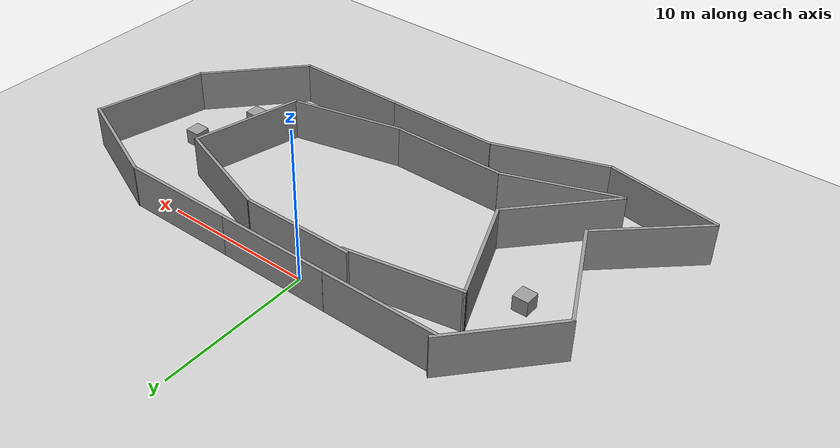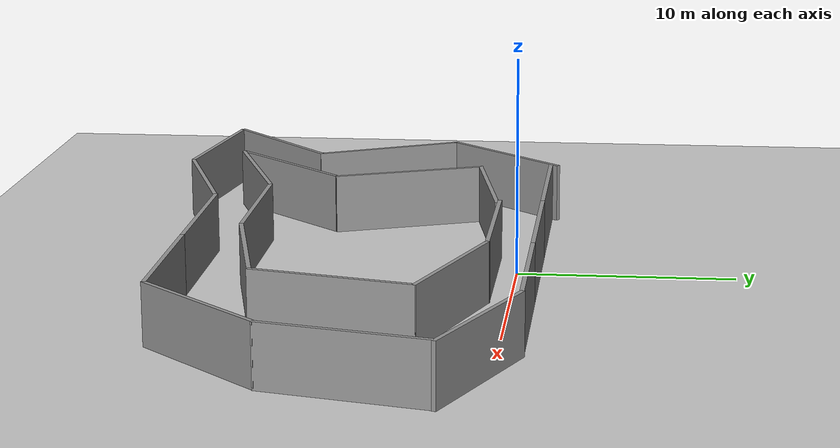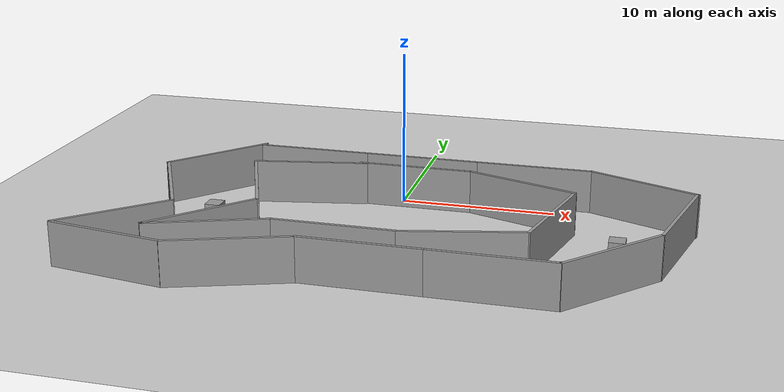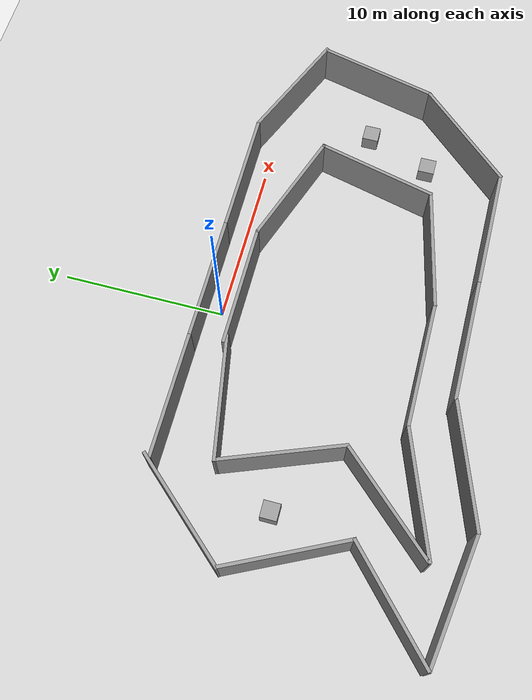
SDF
<sdf version="1.4">
 <world name="default">
  <light name="sun" type="directional">
   <pose>0 0 10 0 -0 0</pose>
   <diffuse>0.8 0.8 0.8 1</diffuse>
   <specular>0.2 0.2 0.2 1</specular>
   <attenuation>
    <range>1000</range>
    <constant>0.9</constant>
    <linear>0.01</linear>
    <quadratic>0.001</quadratic>
   </attenuation>
   <direction>-0.5 0.1 -0.9</direction>
  </light>
  <model name="ground_plane">
   <static>1</static>
   <link name="link">
    <collision name="collision">
     <geometry><plane><normal>0 0 1</normal><size>100 100</size></plane></geometry>
     <surface><friction><ode><mu>100</mu><mu2>50</mu2></ode></friction></surface>
    </collision>
    <visual name="visual">
     <cast_shadows>0</cast_shadows>
     <geometry><plane><normal>0 0 1</normal><size>100 100</size></plane></geometry>
     <material>
      <script><uri>file://media/materials/scripts/gazebo.material</uri><name>Gazebo/Grey</name></script>
     </material>
    </visual>
    <velocity_decay><linear>0</linear><angular>0</angular></velocity_decay>
   </link>
  </model>
  <physics type="ode">
   <max_step_size>0.01</max_step_size>
   <real_time_factor>1</real_time_factor>
   <real_time_update_rate>100</real_time_update_rate>
   <gravity>0 0 -9.8</gravity>
  </physics>
  <scene><ambient>0.4 0.4 0.4 1</ambient><background>0.7 0.7 0.7 1</background><shadows>1</shadows></scene>
  <spherical_coordinates>
   <surface_model>EARTH_WGS84</surface_model>
   <latitude_deg>0</latitude_deg>
   <longitude_deg>0</longitude_deg>
   <elevation>0</elevation>
   <heading_deg>0</heading_deg>
  </spherical_coordinates>
  <model name="grey_wall">
   <static>1</static>
   <link name="link">
    <pose>0 0 1.4 0 -0 0</pose>
    <collision name="collision"><geometry><box><size>7.5 0.2 2.8</size></box></geometry></collision>
    <visual name="visual">
     <cast_shadows>0</cast_shadows>
     <geometry><box><size>7.5 0.2 2.8</size></box></geometry>
     <material>
      <script>
       <uri>model://grey_wall/materials/scripts</uri>
       <uri>model://grey_wall/materials/textures</uri>
       <name>vrc/grey_wall</name>
      </script>
     </material>
    </visual>
    <velocity_decay><linear>0</linear><angular>0</angular></velocity_decay>
   </link>
   <pose>1 1 0 0 -0 0</pose>
  </model>
  <model name="grey_wall_0">
   <static>1</static>
   <link name="link">
    <pose>0 0 1.4 0 -0 0</pose>
    <collision name="collision"><geometry><box><size>7.5 0.2 2.8</size></box></geometry></collision>
    <visual name="visual">
     <cast_shadows>0</cast_shadows>
     <geometry><box><size>7.5 0.2 2.8</size></box></geometry>
     <material>
      <script>
       <uri>model://grey_wall/materials/scripts</uri>
       <uri>model://grey_wall/materials/textures</uri>
       <name>vrc/grey_wall</name>
      </script>
     </material>
    </visual>
    <velocity_decay><linear>0</linear><angular>0</angular></velocity_decay>
   </link>
   <pose>1 -1 0 0 -0 0</pose>
  </model>
  <model name="grey_wall_1">
   <static>1</static>
   <link name="link">
    <pose>0 0 1.4 0 -0 0</pose>
    <collision name="collision"><geometry><box><size>7.5 0.2 2.8</size></box></geometry></collision>
    <visual name="visual">
     <cast_shadows>0</cast_shadows>
     <geometry><box><size>7.5 0.2 2.8</size></box></geometry>
     <material>
      <script>
       <uri>model://grey_wall/materials/scripts</uri>
       <uri>model://grey_wall/materials/textures</uri>
       <name>vrc/grey_wall</name>
      </script>
     </material>
    </visual>
    <velocity_decay><linear>0</linear><angular>0</angular></velocity_decay>
   </link>
   <pose>8.1679 -2.21124 0 0 0 -0.3356</pose>
  </model>
  <model name="grey_wall_2">
   <static>1</static>
   <link name="link">
    <pose>0 0 1.4 0 -0 0</pose>
    <collision name="collision"><geometry><box><size>7.5 0.2 2.8</size></box></geometry></collision>
    <visual name="visual">
     <cast_shadows>0</cast_shadows>
     <geometry><box><size>7.5 0.2 2.8</size></box></geometry>
     <material>
      <script>
       <uri>model://grey_wall/materials/scripts</uri>
       <uri>model://grey_wall/materials/textures</uri>
       <name>vrc/grey_wall</name>
      </script>
     </material>
    </visual>
    <velocity_decay><linear>0</linear><angular>0</angular></velocity_decay>
   </link>
   <pose>10.7542 -7.0132 0 0 0 -1.80708</pose>
  </model>
  <model name="grey_wall_3">
   <static>1</static>
   <link name="link">
    <pose>0 0 1.4 0 -0 0</pose>
    <collision name="collision"><geometry><box><size>7.5 0.2 2.8</size></box></geometry></collision>
    <visual name="visual">
     <cast_shadows>0</cast_shadows>
     <geometry><box><size>7.5 0.2 2.8</size></box></geometry>
     <material>
      <script>
       <uri>model://grey_wall/materials/scripts</uri>
       <uri>model://grey_wall/materials/textures</uri>
       <name>vrc/grey_wall</name>
      </script>
     </material>
    </visual>
    <velocity_decay><linear>0</linear><angular>0</angular></velocity_decay>
   </link>
   <pose>6.21517 -11.4284 0 0 -0 0.228399</pose>
  </model>
  <model name="grey_wall_4">
   <static>1</static>
   <link name="link">
    <pose>0 0 1.4 0 -0 0</pose>
    <collision name="collision"><geometry><box><size>7.5 0.2 2.8</size></box></geometry></collision>
    <visual name="visual">
     <cast_shadows>0</cast_shadows>
     <geometry><box><size>7.5 0.2 2.8</size></box></geometry>
     <material>
      <script>
       <uri>model://grey_wall/materials/scripts</uri>
       <uri>model://grey_wall/materials/textures</uri>
       <name>vrc/grey_wall</name>
      </script>
     </material>
    </visual>
    <velocity_decay><linear>0</linear><angular>0</angular></velocity_decay>
   </link>
   <pose>-1.15525 -12.2553 0 0 -0 0</pose>
  </model>
  <model name="grey_wall_5">
   <static>1</static>
   <link name="link">
    <pose>0 0 1.4 0 -0 0</pose>
    <collision name="collision"><geometry><box><size>7.5 0.2 2.8</size></box></geometry></collision>
    <visual name="visual">
     <cast_shadows>0</cast_shadows>
     <geometry><box><size>7.5 0.2 2.8</size></box></geometry>
     <material>
      <script>
       <uri>model://grey_wall/materials/scripts</uri>
       <uri>model://grey_wall/materials/textures</uri>
       <name>vrc/grey_wall</name>
      </script>
     </material>
    </visual>
    <velocity_decay><linear>0</linear><angular>0</angular></velocity_decay>
   </link>
   <pose>-8.39379 -13.5517 0 0 -0 0.355653</pose>
  </model>
  <model name="grey_wall_6">
   <static>1</static>
   <link name="link">
    <pose>0 0 1.4 0 -0 0</pose>
    <collision name="collision"><geometry><box><size>7.5 0.2 2.8</size></box></geometry></collision>
    <visual name="visual">
     <cast_shadows>0</cast_shadows>
     <geometry><box><size>7.5 0.2 2.8</size></box></geometry>
     <material>
      <script>
       <uri>model://grey_wall/materials/scripts</uri>
       <uri>model://grey_wall/materials/textures</uri>
       <name>vrc/grey_wall</name>
      </script>
     </material>
    </visual>
    <velocity_decay><linear>0</linear><angular>0</angular></velocity_decay>
   </link>
   <pose>-9.38387 -12.076 0 0 -0 0.830881</pose>
  </model>
  <model name="grey_wall_7">
   <static>1</static>
   <link name="link">
    <pose>0 0 1.4 0 -0 0</pose>
    <collision name="collision"><geometry><box><size>7.5 0.2 2.8</size></box></geometry></collision>
    <visual name="visual">
     <cast_shadows>0</cast_shadows>
     <geometry><box><size>7.5 0.2 2.8</size></box></geometry>
     <material>
      <script>
       <uri>model://grey_wall/materials/scripts</uri>
       <uri>model://grey_wall/materials/textures</uri>
       <name>vrc/grey_wall</name>
      </script>
     </material>
    </visual>
    <velocity_decay><linear>0</linear><angular>0</angular></velocity_decay>
   </link>
   <pose>-8.1482 -5.85715 0 0 0 -1.20155</pose>
  </model>
  <model name="grey_wall_8">
   <static>1</static>
   <link name="link">
    <pose>0 0 1.4 0 -0 0</pose>
    <collision name="collision"><geometry><box><size>7.5 0.2 2.8</size></box></geometry></collision>
    <visual name="visual">
     <cast_shadows>0</cast_shadows>
     <geometry><box><size>7.5 0.2 2.8</size></box></geometry>
     <material>
      <script>
       <uri>model://grey_wall/materials/scripts</uri>
       <uri>model://grey_wall/materials/textures</uri>
       <name>vrc/grey_wall</name>
      </script>
     </material>
    </visual>
    <velocity_decay><linear>0</linear><angular>0</angular></velocity_decay>
   </link>
   <pose>-5.8757 -1.78085 0 -0.002531 0.000102 0.185724</pose>
  </model>
  <model name="grey_wall_9">
   <static>1</static>
   <link name="link">
    <pose>0 0 1.4 0 -0 0</pose>
    <collision name="collision"><geometry><box><size>7.5 0.2 2.8</size></box></geometry></collision>
    <visual name="visual">
     <cast_shadows>0</cast_shadows>
     <geometry><box><size>7.5 0.2 2.8</size></box></geometry>
     <material>
      <script>
       <uri>model://grey_wall/materials/scripts</uri>
       <uri>model://grey_wall/materials/textures</uri>
       <name>vrc/grey_wall</name>
      </script>
     </material>
    </visual>
    <velocity_decay><linear>0</linear><angular>0</angular></velocity_decay>
   </link>
   <pose>8.48766 1 0 0 -0 0</pose>
  </model>
  <model name="grey_wall_10">
   <static>1</static>
   <link name="link">
    <pose>0 0 1.4 0 -0 0</pose>
    <collision name="collision"><geometry><box><size>7.5 0.2 2.8</size></box></geometry></collision>
    <visual name="visual">
     <cast_shadows>0</cast_shadows>
     <geometry><box><size>7.5 0.2 2.8</size></box></geometry>
     <material>
      <script>
       <uri>model://grey_wall/materials/scripts</uri>
       <uri>model://grey_wall/materials/textures</uri>
       <name>vrc/grey_wall</name>
      </script>
     </material>
    </visual>
    <velocity_decay><linear>0</linear><angular>0</angular></velocity_decay>
   </link>
   <pose>15.5856 -0.415855 0 0 0 -0.398813</pose>
  </model>
  <model name="grey_wall_11">
   <static>1</static>
   <link name="link">
    <pose>0 0 1.4 0 -0 0</pose>
    <collision name="collision"><geometry><box><size>7.5 0.2 2.8</size></box></geometry></collision>
    <visual name="visual">
     <cast_shadows>0</cast_shadows>
     <geometry><box><size>7.5 0.2 2.8</size></box></geometry>
     <material>
      <script>
       <uri>model://grey_wall/materials/scripts</uri>
       <uri>model://grey_wall/materials/textures</uri>
       <name>vrc/grey_wall</name>
      </script>
     </material>
    </visual>
    <velocity_decay><linear>0</linear><angular>0</angular></velocity_decay>
   </link>
   <pose>18.0434 -5.47553 0 0 -0 1.33971</pose>
  </model>
  <model name="grey_wall_12">
   <static>1</static>
   <link name="link">
    <pose>0 0 1.4 0 -0 0</pose>
    <collision name="collision"><geometry><box><size>7.5 0.2 2.8</size></box></geometry></collision>
    <visual name="visual">
     <cast_shadows>0</cast_shadows>
     <geometry><box><size>7.5 0.2 2.8</size></box></geometry>
     <material>
      <script>
       <uri>model://grey_wall/materials/scripts</uri>
       <uri>model://grey_wall/materials/textures</uri>
       <name>vrc/grey_wall</name>
      </script>
     </material>
    </visual>
    <velocity_decay><linear>0</linear><angular>0</angular></velocity_decay>
   </link>
   <pose>14.696 -11.7815 0 0 -0 0.829846</pose>
  </model>
  <model name="grey_wall_13">
   <static>1</static>
   <link name="link">
    <pose>0 0 1.4 0 -0 0</pose>
    <collision name="collision"><geometry><box><size>7.5 0.2 2.8</size></box></geometry></collision>
    <visual name="visual">
     <cast_shadows>0</cast_shadows>
     <geometry><box><size>7.5 0.2 2.8</size></box></geometry>
     <material>
      <script>
       <uri>model://grey_wall/materials/scripts</uri>
       <uri>model://grey_wall/materials/textures</uri>
       <name>vrc/grey_wall</name>
      </script>
     </material>
    </visual>
    <velocity_decay><linear>0</linear><angular>0</angular></velocity_decay>
   </link>
   <pose>8.45817 -14.4927 0 0 -0 0</pose>
  </model>
  <model name="grey_wall_14">
   <static>1</static>
   <link name="link">
    <pose>0 0 1.4 0 -0 0</pose>
    <collision name="collision"><geometry><box><size>7.5 0.2 2.8</size></box></geometry></collision>
    <visual name="visual">
     <cast_shadows>0</cast_shadows>
     <geometry><box><size>7.5 0.2 2.8</size></box></geometry>
     <material>
      <script>
       <uri>model://grey_wall/materials/scripts</uri>
       <uri>model://grey_wall/materials/textures</uri>
       <name>vrc/grey_wall</name>
      </script>
     </material>
    </visual>
    <velocity_decay><linear>0</linear><angular>0</angular></velocity_decay>
   </link>
   <pose>1 -14.4901 0 0 -0 0</pose>
  </model>
  <model name="grey_wall_15">
   <static>1</static>
   <link name="link">
    <pose>0 0 1.4 0 -0 0</pose>
    <collision name="collision"><geometry><box><size>7.5 0.2 2.8</size></box></geometry></collision>
    <visual name="visual">
     <cast_shadows>0</cast_shadows>
     <geometry><box><size>7.5 0.2 2.8</size></box></geometry>
     <material>
      <script>
       <uri>model://grey_wall/materials/scripts</uri>
       <uri>model://grey_wall/materials/textures</uri>
       <name>vrc/grey_wall</name>
      </script>
     </material>
    </visual>
    <velocity_decay><linear>0</linear><angular>0</angular></velocity_decay>
   </link>
   <pose>-6.21396 -15.7804 0 0 -0 0.34247</pose>
  </model>
  <model name="grey_wall_16">
   <static>1</static>
   <link name="link">
    <pose>0 0 1.4 0 -0 0</pose>
    <collision name="collision"><geometry><box><size>7.5 0.2 2.8</size></box></geometry></collision>
    <visual name="visual">
     <cast_shadows>0</cast_shadows>
     <geometry><box><size>7.5 0.2 2.8</size></box></geometry>
     <material>
      <script>
       <uri>model://grey_wall/materials/scripts</uri>
       <uri>model://grey_wall/materials/textures</uri>
       <name>vrc/grey_wall</name>
      </script>
     </material>
    </visual>
    <velocity_decay><linear>0</linear><angular>0</angular></velocity_decay>
   </link>
   <pose>-13.4192 -16.4401 0 0 0 -0.156759</pose>
  </model>
  <model name="grey_wall_17">
   <static>1</static>
   <link name="link">
    <pose>0 0 1.4 0 -0 0</pose>
    <collision name="collision"><geometry><box><size>7.5 0.2 2.8</size></box></geometry></collision>
    <visual name="visual">
     <cast_shadows>0</cast_shadows>
     <geometry><box><size>7.5 0.2 2.8</size></box></geometry>
     <material>
      <script>
       <uri>model://grey_wall/materials/scripts</uri>
       <uri>model://grey_wall/materials/textures</uri>
       <name>vrc/grey_wall</name>
      </script>
     </material>
    </visual>
    <velocity_decay><linear>0</linear><angular>0</angular></velocity_decay>
   </link>
   <pose>-14.3727 -13.3084 0 0 -0 0.75332</pose>
  </model>
  <model name="grey_wall_18">
   <static>1</static>
   <link name="link">
    <pose>0 0 1.4 0 -0 0</pose>
    <collision name="collision"><geometry><box><size>7.5 0.2 2.8</size></box></geometry></collision>
    <visual name="visual">
     <cast_shadows>0</cast_shadows>
     <geometry><box><size>7.5 0.2 2.8</size></box></geometry>
     <material>
      <script>
       <uri>model://grey_wall/materials/scripts</uri>
       <uri>model://grey_wall/materials/textures</uri>
       <name>vrc/grey_wall</name>
      </script>
     </material>
    </visual>
    <velocity_decay><linear>0</linear><angular>0</angular></velocity_decay>
   </link>
   <pose>-13.2852 -7.49676 0 0 0 -1.11778</pose>
  </model>
  <model name="grey_wall_19">
   <static>1</static>
   <link name="link">
    <pose>0 0 1.4 0 -0 0</pose>
    <collision name="collision"><geometry><box><size>7.5 0.2 2.8</size></box></geometry></collision>
    <visual name="visual">
     <cast_shadows>0</cast_shadows>
     <geometry><box><size>7.5 0.2 2.8</size></box></geometry>
     <material>
      <script>
       <uri>model://grey_wall/materials/scripts</uri>
       <uri>model://grey_wall/materials/textures</uri>
       <name>vrc/grey_wall</name>
      </script>
     </material>
    </visual>
    <velocity_decay><linear>0</linear><angular>0</angular></velocity_decay>
   </link>
   <pose>-12.5024 -1.42459 0 0 0 -2.29562</pose>
  </model>
  <model name="grey_wall_20">
   <static>1</static>
   <link name="link">
    <pose>0 0 1.4 0 -0 0</pose>
    <collision name="collision"><geometry><box><size>7.5 0.2 2.8</size></box></geometry></collision>
    <visual name="visual">
     <cast_shadows>0</cast_shadows>
     <geometry><box><size>7.5 0.2 2.8</size></box></geometry>
     <material>
      <script>
       <uri>model://grey_wall/materials/scripts</uri>
       <uri>model://grey_wall/materials/textures</uri>
       <name>vrc/grey_wall</name>
      </script>
     </material>
    </visual>
    <velocity_decay><linear>0</linear><angular>0</angular></velocity_decay>
   </link>
   <pose>-6.50676 1 0 0 -0 0</pose>
  </model>
  <model name="unit_box_1">
   <pose>14.5136 -6 0.5 0 -0 0</pose>
   <link name="link">
    <inertial>
     <mass>1</mass>
     <inertia><ixx>1</ixx><ixy>0</ixy><ixz>0</ixz><iyy>1</iyy><iyz>0</iyz><izz>1</izz></inertia>
    </inertial>
    <collision name="collision"><geometry><box><size>1 1 1</size></box></geometry></collision>
    <visual name="visual">
     <geometry><box><size>1 1 1</size></box></geometry>
     <material>
      <script><uri>file://media/materials/scripts/gazebo.material</uri><name>Gazebo/Grey</name></script>
     </material>
    </visual>
    <velocity_decay><linear>0</linear><angular>0</angular></velocity_decay>
   </link>
   <static>0</static>
  </model>
  <model name="unit_box_2">
   <pose>-11 -6 0.5 0 -0 0</pose>
   <link name="link">
    <inertial>
     <mass>1</mass>
     <inertia><ixx>1</ixx><ixy>0</ixy><ixz>0</ixz><iyy>1</iyy><iyz>0</iyz><izz>1</izz></inertia>
    </inertial>
    <collision name="collision"><geometry><box><size>1 1 1</size></box></geometry></collision>
    <visual name="visual">
     <geometry><box><size>1 1 1</size></box></geometry>
     <material>
      <script><uri>file://media/materials/scripts/gazebo.material</uri><name>Gazebo/Grey</name></script>
     </material>
    </visual>
    <velocity_decay><linear>0</linear><angular>0</angular></velocity_decay>
   </link>
   <static>0</static>
  </model>
  <model name="unit_box_3">
   <pose>13 -10 0.5 0 -0 0</pose>
   <link name="link">
    <inertial>
     <mass>1</mass>
     <inertia><ixx>1</ixx><ixy>0</ixy><ixz>0</ixz><iyy>1</iyy><iyz>0</iyz><izz>1</izz></inertia>
    </inertial>
    <collision name="collision"><geometry><box><size>1 1 1</size></box></geometry></collision>
    <visual name="visual">
     <geometry><box><size>1 1 1</size></box></geometry>
     <material>
      <script><uri>file://media/materials/scripts/gazebo.material</uri><name>Gazebo/Grey</name></script>
     </material>
    </visual>
    <velocity_decay><linear>0</linear><angular>0</angular></velocity_decay>
   </link>
   <static>0</static>
  </model>
 </world>
</sdf>
